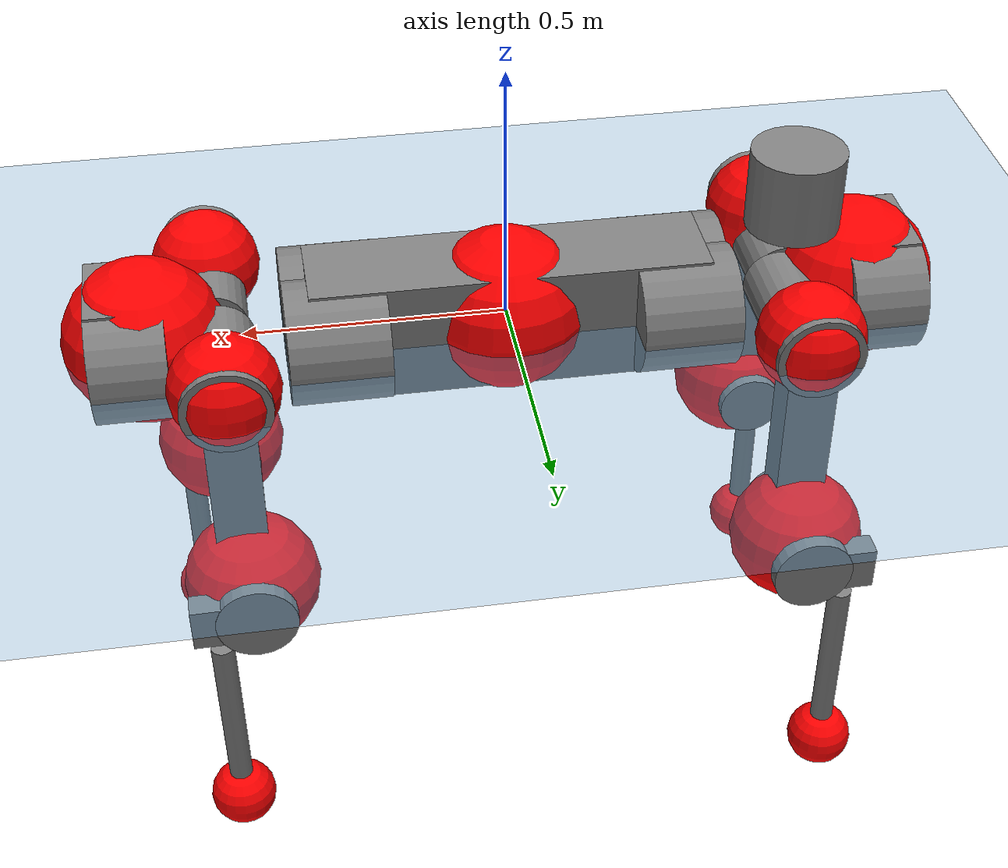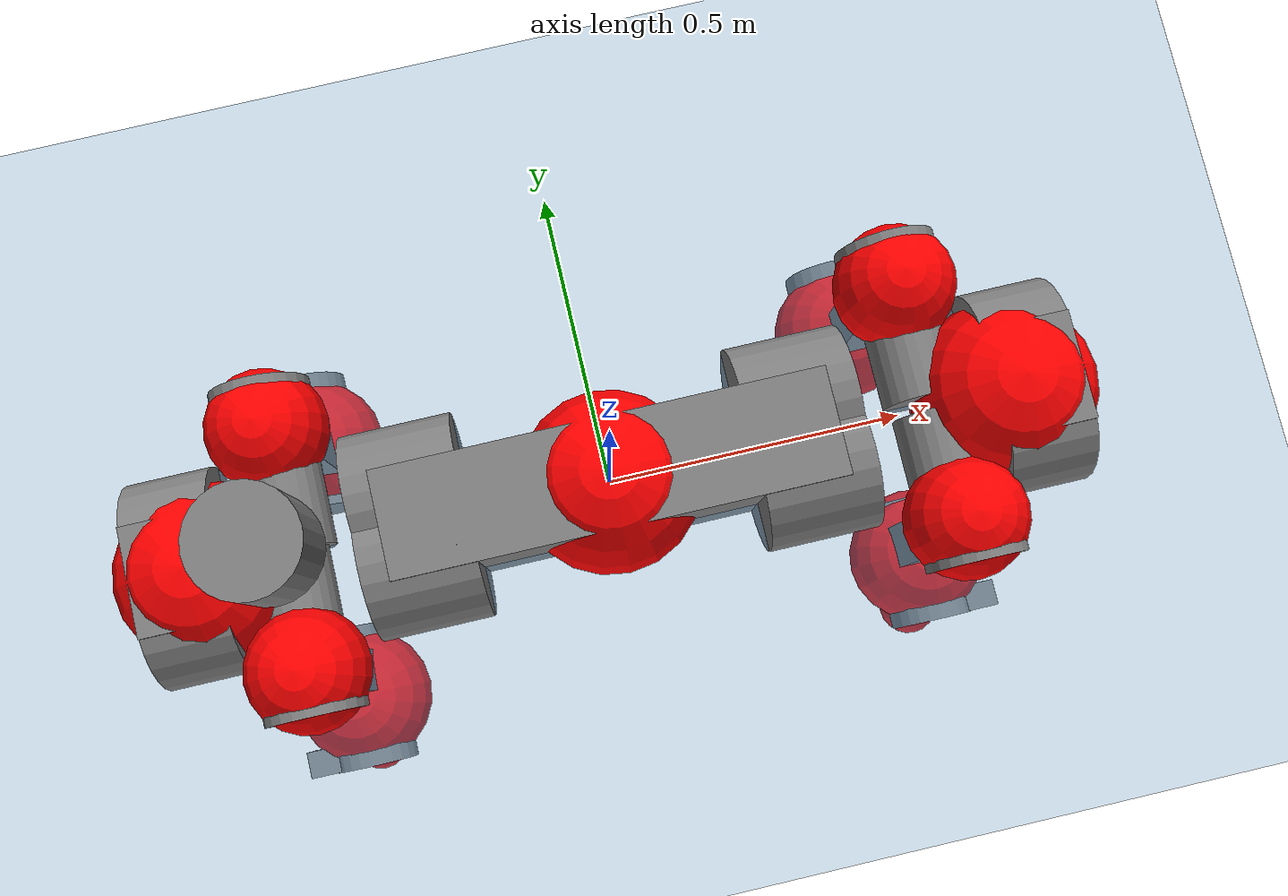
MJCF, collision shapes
<mujoco model="anymal_c">
  <compiler angle="radian" assetdir="assets" balanceinertia="true" inertiafromgeom="false"/>

  <option timestep="0.005" density="1.2" viscosity="2e-05"/>

  <size nkey="1"/>

  <visual>
    <quality shadowsize="8192"/>
    <map shadowclip="0.5"/>
  </visual>

  <default>
    <default class="/">
      <material specular="0" shininess="0.25"/>
      <geom contype="0" conaffinity="0" group="1" solref="-1000 -80"/>
      <site size="0.01 0.005 0.005" group="5"/>
      <general forcelimited="true" forcerange="-80 80" biastype="affine" gainprm="80" biasprm="0 -80 -2"/>
      <default class="anymal_c">
        <joint armature="0.01" damping="0.01" frictionloss="0.1"/>
        <default class="visual">
          <geom type="mesh" group="2"/>
          <default class="visual_zflip"/>
        </default>
        <default class="collision">
          <geom type="cylinder" group="3"/>
          <default class="foot">
            <geom size="0.03 0 0" type="sphere" condim="6" priority="1" friction="0.8 0.02 0.01" solimp="0.015 1 0.03"/>
          </default>
        </default>
      </default>
      <default class="reward_collision_sphere">
        <geom group="5" rgba="1 0 0 1"/>
      </default>
    </default>
  </default>

  <asset>
    <texture type="skybox" colorspace="auto" name="//unnamed_texture_0" builtin="gradient" rgb1="0.95 0.95 0.95" rgb2="0.95 0.95 0.95" width="100" height="600"/>
    <texture type="2d" colorspace="auto" name="texplane" builtin="checker" rgb1="0.345 0.575 0.748" rgb2="0.345 0.575 0.748" markrgb="1 1 1" width="512" height="512"/>
    <texture type="2d" colorspace="linear" name="base" file="base.png"/>
    <texture type="2d" colorspace="linear" name="top_shell" file="top_shell.png"/>
    <texture type="2d" colorspace="linear" name="bottom_shell" file="bottom_shell.png"/>
    <texture type="2d" colorspace="linear" name="remote" file="remote.png"/>
    <texture type="2d" colorspace="linear" name="hatch" file="hatch.png"/>
    <texture type="2d" colorspace="linear" name="handle" file="handle.png"/>
    <texture type="2d" colorspace="linear" name="face" file="face.png"/>
    <texture type="2d" colorspace="linear" name="battery" file="battery.png"/>
    <texture type="2d" colorspace="linear" name="lidar_cage" file="lidar_cage.png"/>
    <texture type="2d" colorspace="linear" name="depth_camera" file="depth_camera.png"/>
    <texture type="2d" colorspace="linear" name="wide_angle_camera" file="wide_angle_camera.png"/>
    <texture type="2d" colorspace="linear" name="lidar" file="lidar.png"/>
    <texture type="2d" colorspace="linear" name="drive" file="drive.png"/>
    <texture type="2d" colorspace="linear" name="hip_l" file="hip_l.png"/>
    <texture type="2d" colorspace="linear" name="shank_l" file="shank_l.png"/>
    <texture type="2d" colorspace="linear" name="foot" file="foot.png"/>
    <texture type="2d" colorspace="linear" name="thigh" file="thigh.png"/>
    <texture type="2d" colorspace="linear" name="shank_r" file="shank_r.png"/>
    <texture type="2d" colorspace="linear" name="hip_r" file="hip_r.png"/>
    <material name="MatPlane" class="/" texture="texplane" texuniform="true" texrepeat="2 2" specular="0.9" shininess="0.5"/>
    <material name="black_plastic" class="/" rgba="0.007 0.007 0.007 1"/>
    <material name="green" class="/" rgba="0.052 0.178 0.033 1"/>
    <material name="red" class="/" rgba="0.178 0.006 0.005 1"/>
    <material name="yellow" class="/" rgba="0.178 0.119 0.006 1"/>
    <material name="lwl" class="/" rgba="0.8 0.8 0.8 1"/>
    <material name="base" class="/" texture="base"/>
    <material name="top_shell" class="/" texture="top_shell"/>
    <material name="bottom_shell" class="/" texture="bottom_shell"/>
    <material name="hip_l" class="/" texture="hip_l"/>
    <material name="thigh" class="/" texture="thigh"/>
    <material name="shank_l" class="/" texture="shank_l"/>
    <material name="foot" class="/" texture="foot"/>
    <material name="hip_r" class="/" texture="hip_r"/>
    <material name="shank" class="/" texture="shank_r"/>
    <material name="hatch" class="/" texture="hatch"/>
    <material name="remote" class="/" texture="remote"/>
    <material name="handle" class="/" texture="handle"/>
    <material name="face" class="/" texture="face"/>
    <material name="depth_camera" class="/" texture="depth_camera"/>
    <material name="wide_angle_camera" class="/" texture="wide_angle_camera"/>
    <material name="battery" class="/" texture="battery"/>
    <material name="lidar_cage" class="/" texture="lidar_cage"/>
    <material name="lidar" class="/" texture="lidar"/>
    <material name="drive" class="/" texture="drive"/>
    <mesh name="base_0" class="/" file="base_0.obj"/>
    <mesh name="base_1" class="/" file="base_1.obj"/>
    <mesh name="base_2" class="/" file="base_2.obj"/>
    <mesh name="base_3" class="/" file="base_3.obj"/>
    <mesh name="base_4" class="/" file="base_4.obj"/>
    <mesh name="base_5" class="/" file="base_5.obj"/>
    <mesh name="top_shell" class="/" file="top_shell.obj"/>
    <mesh name="bottom_shell" class="/" file="bottom_shell.obj"/>
    <mesh name="remote" class="/" file="remote.obj"/>
    <mesh name="handle" class="/" file="handle.obj"/>
    <mesh name="face" class="/" file="face.obj"/>
    <mesh name="wide_angle_camera" class="/" file="wide_angle_camera.obj"/>
    <mesh name="depth_camera" class="/" file="depth_camera.obj"/>
    <mesh name="battery" class="/" file="battery.obj"/>
    <mesh name="lidar_cage" class="/" file="lidar_cage.obj"/>
    <mesh name="lidar" class="/" file="lidar.obj"/>
    <mesh name="drive" class="/" file="drive.obj"/>
    <mesh name="hip_l" class="/" file="hip_l.obj"/>
    <mesh name="thigh" class="/" file="thigh.obj"/>
    <mesh name="shank_l" class="/" file="shank_l.obj"/>
    <mesh name="foot" class="/" file="foot.obj"/>
    <mesh name="hip_r" class="/" file="hip_r.obj"/>
    <mesh name="hatch" class="/" file="hatch.obj"/>
    <mesh name="shank_r" class="/" file="shank_r.obj"/>
  </asset>

  <worldbody>
    <geom name="floor" class="/" size="100 100 0.125" type="plane" group="0" material="MatPlane"/>
    <light name="toplight_shadow" class="/" pos="0 0 5" dir="0.0990148 0.0990148 -0.990148" type="directional" ambient="0.04 0.04 0.04" diffuse="0.55 0.55 0.55" specular="0.12 0.12 0.12"/>
    <light name="toplight_fill" class="/" pos="0 0 5" dir="0.0990148 0.0990148 -0.990148" type="directional" castshadow="false" ambient="0.04 0.04 0.04" diffuse="0.3 0.3 0.3" specular="0.08 0.08 0.08"/>
    <body name="trunk" childclass="anymal_c" pos="-0.000682776 -0.00118134 0.00899016" quat="1 0.00024666 -0.000447465 -0.000174043">
      <inertial pos="0.0138691 0.0117465 0.0726171" quat="0.481887 0.497489 0.512295 0.507783" mass="41.6619" diaginertia="3.91696 0.19732 1.72968"/>
      <joint name="//unnamed_joint_0" type="free" armature="0" damping="0" frictionloss="0"/>
      <geom name="//unnamed_geom_1" class="visual" material="green" mesh="base_0"/>
      <geom name="//unnamed_geom_2" class="visual" material="yellow" mesh="base_1"/>
      <geom name="//unnamed_geom_3" class="visual" material="red" mesh="base_2"/>
      <geom name="//unnamed_geom_4" class="visual" material="black_plastic" mesh="base_3"/>
      <geom name="//unnamed_geom_5" class="visual" material="lwl" mesh="base_4"/>
      <geom name="//unnamed_geom_6" class="visual" material="base" mesh="base_5"/>
      <geom name="trunk_1" class="collision" size="0.376383 0.0908511 0.116809" type="box"/>
      <geom name="trunk_2" class="collision" size="0.116809 0.0940958" pos="0.328251 0.0575629 0" quat="0.707107 0 0.707107 0"/>
      <geom name="trunk_3" class="collision" size="0.116809 0.0940958" pos="-0.328251 0.0575629 0" quat="0.707107 0 0.707107 0"/>
      <geom name="trunk_4" class="collision" size="0.116809 0.0940958" pos="0.328251 -0.0575629 0" quat="0.707107 0 0.707107 0"/>
      <geom name="trunk_5" class="collision" size="0.116809 0.0940958" pos="-0.328251 -0.0575629 0" quat="0.707107 0 0.707107 0"/>
      <geom name="//unnamed_geom_12" class="visual" material="top_shell" mesh="top_shell"/>
      <geom name="//unnamed_geom_13" class="visual" material="bottom_shell" mesh="bottom_shell"/>
      <geom name="//unnamed_geom_14" class="visual" material="remote" mesh="remote"/>
      <geom name="//unnamed_geom_15" class="visual" material="handle" mesh="handle"/>
      <geom name="//unnamed_geom_16" class="visual" pos="0.625564 0 0" quat="1 0 0 0" material="face" mesh="face"/>
      <geom name="trunk_6" class="collision" size="0.071383 0.0908511 0.116809" pos="0.70857 0 0" type="box"/>
      <geom name="//unnamed_geom_18" class="collision" size="0.116809 0.071383" pos="0.70857 0.0575629 0" quat="0.707107 0 0.707107 0"/>
      <geom name="//unnamed_geom_19" class="collision" size="0.116809 0.071383" pos="0.70857 -0.0575629 0" quat="0.707107 0 0.707107 0"/>
      <geom name="//unnamed_geom_20" class="visual" pos="0.696725 0 -0.0460149" quat="0.965926 0 0.258819 0" material="depth_camera" mesh="depth_camera"/>
      <geom name="//unnamed_geom_21" class="visual" pos="0.774221 0 0.0233845" material="wide_angle_camera" mesh="wide_angle_camera"/>
      <geom name="//unnamed_geom_22" class="visual_zflip" pos="-0.625564 0 0" quat="0 0 0 1" material="face" mesh="face"/>
      <geom name="trunk_7" class="collision" size="0.071383 0.0908511 0.116809" pos="-0.70857 0 0" quat="0 0 0 1" type="box"/>
      <geom name="//unnamed_geom_24" class="collision" size="0.116809 0.071383" pos="-0.70857 -0.0575629 0" quat="0 -0.707107 0 0.707107"/>
      <geom name="//unnamed_geom_25" class="collision" size="0.116809 0.071383" pos="-0.70857 0.0575629 0" quat="0 -0.707107 0 0.707107"/>
      <geom name="//unnamed_geom_26" class="visual" pos="-0.696725 0 -0.0460149" quat="0 -0.258819 0 0.965926" material="depth_camera" mesh="depth_camera"/>
      <geom name="//unnamed_geom_27" class="visual_zflip" pos="-0.774221 0 0.0233845" quat="0 0 0 1" material="wide_angle_camera" mesh="wide_angle_camera"/>
      <geom name="//unnamed_geom_28" class="visual" material="battery" mesh="battery"/>
      <geom name="//unnamed_geom_29" class="visual" pos="0 0.0538641 0.0449767" quat="0.683013 -0.183013 0.183013 0.683013" material="depth_camera" mesh="depth_camera"/>
      <geom name="//unnamed_geom_30" class="visual" pos="0 -0.0538641 0.0449767" quat="0.683013 0.183013 0.183013 -0.683013" material="depth_camera" mesh="depth_camera"/>
      <geom name="//unnamed_geom_31" class="visual" pos="-0.54935 0 0.114814" quat="1 0 0 0" material="lidar_cage" mesh="lidar_cage"/>
      <geom name="trunk_8" class="collision" size="0.0908511 0.0778724" pos="-0.54935 0 0.208539"/>
      <geom name="//unnamed_geom_33" class="visual" pos="-0.54935 -0.000269855 0.222129" quat="0.707107 0 0 -0.707107" material="lidar" mesh="lidar"/>
      <geom name="//unnamed_geom_34" class="visual" pos="0.45261 0.0857849 -1.2761e-08" quat="0.258819 0.965926 0 0" material="drive" mesh="drive"/>
      <geom name="//unnamed_geom_35" class="visual" pos="0.45261 -0.0857849 1.2761e-08" quat="0.258819 -0.965926 0 0" material="drive" mesh="drive"/>
      <geom name="//unnamed_geom_36" class="visual" pos="-0.45261 0.0857849 1.2761e-08" quat="0 0 0.965926 -0.258819" material="drive" mesh="drive"/>
      <geom name="//unnamed_geom_37" class="visual" pos="-0.45261 -0.0857849 -1.2761e-08" quat="0 0 -0.965926 -0.258819" material="drive" mesh="drive"/>
      <geom name="//unnamed_geom_38" class="visual" pos="0.175067 0 0.114032" quat="1 0 0 0" material="hatch" mesh="hatch"/>
      <geom name="//unnamed_geom_39" class="reward_collision_sphere" size="0.155745"/>
      <geom name="//unnamed_geom_40" class="reward_collision_sphere" size="0.155745" pos="0.679141 0 0"/>
      <geom name="//unnamed_geom_41" class="reward_collision_sphere" size="0.155745" pos="-0.679141 0 0"/>
      <site name="imu" pos="0.444664 0.0146686 0.0140306" size="0.0129787"/>
      <camera name="track" pos="0 -1.64465 0" quat="0.707107 0.707107 0 0" mode="trackcom"/>
      <camera name="ego_camera" pos="0.679141 0 -0.0624835" quat="-0.5 -0.5 0.5 0.5"/>
      <body name="LF_HIP" pos="0.45113 0.0904937 -0.000702242" quat="0.259773 0.965665 0.00287095 -0.00113167">
        <inertial pos="0.0736275 -0.00599718 -0.0128379" quat="-0.136277 0.730668 -0.150554 0.651833" mass="6.9758" diaginertia="0.0528477 0.00181769 0.0288053"/>
        <joint name="LF_HAA" pos="0 0 0" axis="0.998818 0.00492198 -0.0483624" stiffness="0.0191548" range="-0.714176 0.344146" armature="0.00462591" damping="0.0694573" frictionloss="0.144475"/>
        <geom name="//unnamed_geom_42" class="visual" pos="0 -0.00075067 0.000123297" quat="0.258819 -0.965926 0 0" material="hip_l" mesh="hip_l"/>
        <geom name="//unnamed_geom_43" class="visual" pos="0.0904012 -0.100759 -0.0636451" quat="0.183013 -0.683013 0.683013 0.183013" material="drive" mesh="drive"/>
        <geom name="//unnamed_geom_44" class="collision" size="0.0648936 0.0908511" pos="0.0904012 -0.00983487 -0.0107862" quat="-0.353553 -0.612372 0.612372 -0.353553"/>
        <body name="LF_THIGH" pos="0.0903332 -0.0591397 -0.0647619" quat="0.182993 -0.682972 0.683077 0.182945">
          <inertial pos="0.040935 -0.000332087 -0.395979" quat="0.99098 -0.0108981 -0.0890333 0.0995669" mass="6.02903" diaginertia="0.272235 0.0111539 0.0398615"/>
          <joint name="LF_HFE" pos="0 0 0" axis="0.997693 -0.0313736 -0.0602095" range="-3.07406 3.09353" armature="0.0117656" damping="0.0276044" frictionloss="0.205405"/>
          <geom name="//unnamed_geom_45" class="visual" pos="0.0136661 2.15346e-05 0" quat="0.707107 0 0 -0.707107" material="thigh" mesh="thigh"/>
          <geom name="//unnamed_geom_46" class="collision" size="0.0843617 0.0519149" pos="0.0603681 0 0" quat="0.5 0.5 -0.5 -0.5"/>
          <geom name="//unnamed_geom_47" class="collision" size="0.0486702 0.0389362 0.183408" pos="0.0452761 0 -0.220745" quat="0.707107 0 0 -0.707107" type="box"/>
          <geom name="//unnamed_geom_48" class="visual" pos="0.151373 0 -0.445195" quat="1 0 0 0" material="drive" mesh="drive"/>
          <geom name="//unnamed_geom_49" class="collision" size="0.0648936 0.0908511" pos="0.0457288 0 -0.445195" quat="0.707107 0 0.707107 0"/>
          <geom name="//unnamed_geom_50" class="reward_collision_sphere" size="0.10383" pos="0.0377301 0 0"/>
          <body name="LF_SHANK" pos="0.140817 0.0109171 -0.431382" quat="0.999986 0.00475396 -0.00145823 -0.00168981">
            <inertial pos="0.0113665 -0.0504501 -0.122691" quat="0.992927 -0.114383 -0.0181204 -0.0261715" mass="1.39632" diaginertia="0.0866805 0.0034817 0.0117392"/>
            <joint name="LF_KFE" pos="0 0 0" axis="0.999678 -0.0251744 -0.00312538" stiffness="0.000476818" range="-2.96884 3.03535" armature="0.0089344" damping="0.0606725" frictionloss="0.0766555"/>
            <geom name="//unnamed_geom_51" class="visual" pos="0.00445622 0.0237608 0" quat="0.707107 0 0 -0.707107" material="shank_l" mesh="shank_l"/>
            <geom name="LF_kfe_act" class="collision" size="0.0778724 0.0259575" pos="0.030184 0 0" quat="0.5 0.5 -0.5 -0.5"/>
            <geom name="//unnamed_geom_53" class="collision" size="0.0746264 0.0438032 0.0246596" pos="0.030184 -0.047283 0" quat="0.5 0.5 -0.5 -0.5" type="box"/>
            <geom name="//unnamed_geom_54" class="visual" pos="0.019694 -0.0646666 -0.527939" quat="0.382683 0 0 -0.92388" material="foot" mesh="foot"/>
            <geom name="LF_calf" class="collision" size="0.0227128 0.183327" pos="0.0196951 -0.0723237 -0.26397" quat="0.707107 0 0 -0.707107"/>
            <geom name="LF_foot" class="foot" size="0.0428194" pos="0.0196951 -0.0723237 -0.492792" quat="0.707107 0 0 -0.707107"/>
            <geom name="//unnamed_geom_57" class="reward_collision_sphere" size="0.129787" pos="-0.0754601 0 0"/>
            <geom name="//unnamed_geom_58" class="reward_collision_sphere" size="0.0648936" pos="0.0196951 -0.0723237 -0.492792"/>
            <site name="LF_foot" class="foot" pos="0.0196951 -0.0723237 -0.492792" quat="0.707107 0 0 -0.707107" size="0.0129787"/>
          </body>
        </body>
      </body>
      <body name="RF_HIP" pos="0.461006 -0.0870475 0.00136737" quat="0.258832 -0.965922 -1.70184e-07 7.82515e-06">
        <inertial pos="0.0741608 0.013584 -0.013421" quat="0.139944 0.678912 0.128652 0.709184" mass="5.69195" diaginertia="0.0442854 0.00150911 0.0278271"/>
        <joint name="RF_HAA" pos="0 0 0" axis="0.999698 0.00972803 -0.0225852" stiffness="0.0215761" range="-0.248121 0.681357" armature="0.0200061" damping="0.00439453" frictionloss="0.20625"/>
        <geom name="//unnamed_geom_59" class="visual" pos="0 0.000750664 0.000123297" quat="0.258819 0.965926 0 0" material="hip_r" mesh="hip_r"/>
        <geom name="//unnamed_geom_60" class="visual" pos="0.0904012 0.100759 -0.0636451" quat="0.183013 0.683013 0.683013 -0.183013" material="drive" mesh="drive"/>
        <geom name="//unnamed_geom_61" class="collision" size="0.0648936 0.0908511" pos="0.0904012 0.00983487 -0.0107862" quat="-0.353553 0.612372 0.612372 0.353553"/>
        <body name="RF_THIGH" pos="0.0963122 0.0471568 -0.0588632" quat="0.184178 0.682725 0.683046 -0.182793">
          <inertial pos="0.0465136 -0.00169593 -0.383229" quat="0.985287 0.0205309 -0.117093 0.122792" mass="8.74769" diaginertia="0.263683 0.0113345 0.0403432"/>
          <joint name="RF_HFE" pos="0 0 0" axis="0.998738 0.013705 0.0483223" stiffness="0.010379" range="-3.41292 2.96848" armature="0.0121137" damping="0.0596255" frictionloss="0.0334094"/>
          <geom name="//unnamed_geom_62" class="visual" pos="0.0136661 2.15346e-05 0" quat="0.707107 0 0 -0.707107" material="thigh" mesh="thigh"/>
          <geom name="//unnamed_geom_63" class="collision" size="0.0843617 0.0519149" pos="0.0603681 0 0" quat="0.5 0.5 0.5 0.5"/>
          <geom name="//unnamed_geom_64" class="collision" size="0.0486702 0.0389362 0.183408" pos="0.0452761 0 -0.220745" quat="0.707107 0 0 0.707107" type="box"/>
          <geom name="//unnamed_geom_65" class="visual" pos="0.151373 0 -0.445195" quat="1 0 0 0" material="drive" mesh="drive"/>
          <geom name="//unnamed_geom_66" class="collision" size="0.0648936 0.0908511" pos="0.0457288 0 -0.445195" quat="0.707107 0 0.707107 0"/>
          <geom name="//unnamed_geom_67" class="reward_collision_sphere" size="0.10383" pos="0.0377301 0 0"/>
          <body name="RF_SHANK" pos="0.139754 0.0126248 -0.450577" quat="1 5.96478e-06 -8.23851e-05 -0.000180584">
            <inertial pos="0.00699102 0.0503767 -0.138495" quat="0.994795 0.0920249 -0.0294539 0.0323556" mass="1.2982" diaginertia="0.0918408 0.00387546 0.0102732"/>
            <joint name="RF_KFE" pos="0 0 0" axis="0.999991 -0.00130101 -0.00391816" range="-2.98592 2.97497" armature="0.0157461" damping="0.00561242" frictionloss="0.215502"/>
            <geom name="//unnamed_geom_68" class="visual" pos="0.00445619 -0.0237607 0" quat="0.707107 0 0 0.707107" material="shank" mesh="shank_r"/>
            <geom name="RF_kfe_act" class="collision" size="0.0778724 0.0259575" pos="0.030184 0 0" quat="0.5 0.5 0.5 0.5"/>
            <geom name="//unnamed_geom_70" class="collision" size="0.0746264 0.0438032 0.0246596" pos="0.030184 0.047283 0" quat="0.5 0.5 0.5 0.5" type="box"/>
            <geom name="//unnamed_geom_71" class="visual" pos="0.0196962 0.0646666 -0.527939" quat="0.382683 0 0 0.92388" material="foot" mesh="foot"/>
            <geom name="RF_calf" class="collision" size="0.0227128 0.183327" pos="0.0196951 0.0723237 -0.26397" quat="0.707107 0 0 0.707107"/>
            <geom name="RF_foot" class="foot" size="0.0607584" pos="0.0196951 0.0723237 -0.492792" quat="0.707107 0 0 0.707107"/>
            <geom name="//unnamed_geom_74" class="reward_collision_sphere" size="0.129787" pos="-0.0754601 0 0"/>
            <geom name="//unnamed_geom_75" class="reward_collision_sphere" size="0.0648936" pos="0.0196951 0.0723237 -0.492792"/>
            <site name="RF_foot" class="foot" pos="0.0196951 0.0723237 -0.492792" quat="0.707107 0 0 0.707107" size="0.0129787"/>
          </body>
        </body>
      </body>
      <body name="LH_HIP" pos="-0.439046 0.0797874 -0.00131112" quat="-0.000786503 0.000446001 0.965494 -0.260423">
        <inertial pos="0.0796052 0.000415553 -0.0129379" quat="0.104425 0.663514 0.130031 0.72934" mass="6.08488" diaginertia="0.0553031 0.00175579 0.0399358"/>
        <joint name="LH_HAA" pos="0 0 0" axis="0.999715 0.0232995 0.00519104" stiffness="0.0229394" range="-0.591254 1.01698" armature="0.0213251" damping="0.0474188" frictionloss="0.128109"/>
        <geom name="//unnamed_geom_76" class="visual" pos="0 0.000750664 0.000123297" quat="-0.258819 -0.965926 0 0" material="hip_r" mesh="hip_r"/>
        <geom name="//unnamed_geom_77" class="visual" pos="0.0904012 0.100759 -0.0636451" quat="0.183013 0.683013 0.683013 -0.183013" material="drive" mesh="drive"/>
        <geom name="//unnamed_geom_78" class="collision" size="0.0648936 0.0908511" pos="0.0904012 0.00983487 -0.0107862" quat="-0.353553 0.612372 0.612372 0.353553"/>
        <body name="LH_THIGH" pos="0.0986993 0.07424 -0.0621828" quat="0.183218 0.683346 0.682647 -0.182926">
          <inertial pos="0.0469055 -0.0105127 -0.381929" quat="0.992527 -0.00614485 -0.0827873 0.0894326" mass="6.60874" diaginertia="0.233186 0.012283 0.0367572"/>
          <joint name="LH_HFE" pos="0 0 0" axis="0.998523 0.0460174 0.0288963" range="-3.12535 3.15851" armature="0.0173209" damping="0.040018" frictionloss="0.0988962"/>
          <geom name="//unnamed_geom_79" class="visual" pos="0.0136661 2.15346e-05 0" quat="0.707107 0 0 -0.707107" material="thigh" mesh="thigh"/>
          <geom name="//unnamed_geom_80" class="collision" size="0.0843617 0.0519149" pos="0.0603681 0 0" quat="0.5 0.5 -0.5 -0.5"/>
          <geom name="//unnamed_geom_81" class="collision" size="0.0486702 0.0389362 0.183408" pos="0.0452761 0 -0.220745" quat="0.707107 0 0 -0.707107" type="box"/>
          <geom name="//unnamed_geom_82" class="visual" pos="0.151373 0 -0.445195" quat="1 0 0 0" material="drive" mesh="drive"/>
          <geom name="//unnamed_geom_83" class="collision" size="0.0648936 0.0908511" pos="0.0457288 0 -0.445195" quat="0.707107 0 0.707107 0"/>
          <geom name="//unnamed_geom_84" class="reward_collision_sphere" size="0.10383" pos="0.0377301 0 0"/>
          <body name="LH_SHANK" pos="0.159854 0.000140839 -0.440098" quat="0.999996 0.000666674 -0.00221582 0.00136409">
            <inertial pos="0.00839922 0.0498613 -0.126401" quat="0.993984 0.0870766 -0.0660721 0.00695652" mass="1.29877" diaginertia="0.0805425 0.00347073 0.0124083"/>
            <joint name="LH_KFE" pos="0 0 0" axis="0.998821 0.0331007 -0.0355052" range="-3.18796 3.14464" armature="0.0189322" damping="0.0132053" frictionloss="0.0748192"/>
            <geom name="//unnamed_geom_85" class="visual" pos="0.00445619 -0.0237607 0" quat="-0.707107 0 0 -0.707107" material="shank" mesh="shank_r"/>
            <geom name="LH_kfe_act" class="collision" size="0.0778724 0.0259575" pos="0.030184 0 0" quat="0.5 0.5 -0.5 -0.5"/>
            <geom name="//unnamed_geom_87" class="collision" size="0.0746264 0.0438032 0.0246596" pos="0.030184 0.047283 0" quat="0.5 0.5 -0.5 -0.5" type="box"/>
            <geom name="//unnamed_geom_88" class="visual" pos="0.0196962 0.0646666 -0.527939" quat="-0.382683 0 0 -0.92388" material="foot" mesh="foot"/>
            <geom name="LH_calf" class="collision" size="0.0227128 0.183327" pos="0.0196951 0.0723237 -0.26397" quat="0.707107 0 0 -0.707107"/>
            <geom name="LH_foot" class="foot" size="0.0167419" pos="0.0196951 0.0723237 -0.492792" quat="0.707107 0 0 -0.707107"/>
            <geom name="//unnamed_geom_91" class="reward_collision_sphere" size="0.129787" pos="-0.0754601 0 0"/>
            <geom name="//unnamed_geom_92" class="reward_collision_sphere" size="0.0648936" pos="0.0196951 0.0723237 -0.492792"/>
            <site name="LH_foot" class="foot" pos="0.0196951 0.0723237 -0.492792" quat="0.707107 0 0 -0.707107" size="0.0129787"/>
          </body>
        </body>
      </body>
      <body name="RH_HIP" pos="-0.452754 -0.0732805 0.00601713" quat="0.00319018 -0.00319297 -0.966472 -0.256731">
        <inertial pos="0.0979427 -0.0134482 -0.0242606" quat="-0.117433 0.705242 -0.149008 0.683111" mass="6.6243" diaginertia="0.0504132 0.00198638 0.0386386"/>
        <joint name="RH_HAA" pos="0 0 0" axis="1 -0.000869715 7.19972e-05" stiffness="0.0322673" range="-0.501391 0.21862" armature="0.0128485" damping="0.0498886" frictionloss="0.137984"/>
        <geom name="//unnamed_geom_93" class="visual" pos="0 -0.00075067 0.000123297" quat="-0.258819 0.965926 0 0" material="hip_l" mesh="hip_l"/>
        <geom name="//unnamed_geom_94" class="visual" pos="0.0904012 -0.100759 -0.0636451" quat="-0.183013 0.683013 -0.683013 -0.183013" material="drive" mesh="drive"/>
        <geom name="//unnamed_geom_95" class="collision" size="0.0648936 0.0908511" pos="0.0904012 -0.00983487 -0.0107862" quat="0.353553 0.612372 -0.612372 0.353553"/>
        <body name="RH_THIGH" pos="0.090365 -0.0532234 -0.0778366" quat="-0.183167 0.682667 -0.683334 -0.182949">
          <inertial pos="0.0373176 0.00290039 -0.386031" quat="0.993419 -0.0054684 -0.0802601 0.0815331" mass="9.24671" diaginertia="0.318479 0.0133303 0.0443016"/>
          <joint name="RH_HFE" pos="0 0 0" axis="0.998593 0.0528923 0.00388213" stiffness="0.00734592" range="-3.14254 3.17821" armature="0.0165198" damping="0.0308536" frictionloss="0.137655"/>
          <geom name="//unnamed_geom_96" class="visual" pos="0.0136661 2.15346e-05 0" quat="0.707107 0 0 -0.707107" material="thigh" mesh="thigh"/>
          <geom name="//unnamed_geom_97" class="collision" size="0.0843617 0.0519149" pos="0.0603681 0 0" quat="0.5 0.5 0.5 0.5"/>
          <geom name="//unnamed_geom_98" class="collision" size="0.0486702 0.0389362 0.183408" pos="0.0452761 0 -0.220745" quat="0.707107 0 0 0.707107" type="box"/>
          <geom name="//unnamed_geom_99" class="visual" pos="0.151373 0 -0.445195" quat="1 0 0 0" material="drive" mesh="drive"/>
          <geom name="//unnamed_geom_100" class="collision" size="0.0648936 0.0908511" pos="0.0457288 0 -0.445195" quat="0.707107 0 0.707107 0"/>
          <geom name="//unnamed_geom_101" class="reward_collision_sphere" size="0.10383" pos="0.0377301 0 0"/>
          <body name="RH_SHANK" pos="0.163398 0.00282276 -0.447266" quat="0.999995 0.0027892 0.00130672 -0.00107378">
            <inertial pos="0.0135395 -0.0502074 -0.126137" quat="0.992707 -0.10622 0.0528216 -0.0214687" mass="1.25974" diaginertia="0.0863704 0.00298986 0.0103893"/>
            <joint name="RH_KFE" pos="0 0 0" axis="0.999859 -0.0129495 -0.0107183" range="-3.08807 3.22439" armature="0.0216532" damping="0" frictionloss="0.132438"/>
            <geom name="//unnamed_geom_102" class="visual" pos="0.00445622 0.0237608 0" quat="0.707107 0 0 -0.707107" material="shank_l" mesh="shank_l"/>
            <geom name="RH_kfe_act" class="collision" size="0.0778724 0.0259575" pos="0.030184 0 0" quat="0.5 0.5 0.5 0.5"/>
            <geom name="//unnamed_geom_104" class="collision" size="0.0746264 0.0438032 0.0246596" pos="0.030184 -0.047283 0" quat="0.5 0.5 0.5 0.5" type="box"/>
            <geom name="//unnamed_geom_105" class="visual" pos="0.019694 -0.0646666 -0.527939" quat="0.382683 0 0 -0.92388" material="foot" mesh="foot"/>
            <geom name="RH_calf" class="collision" size="0.0227128 0.183327" pos="0.0196951 -0.0723237 -0.26397" quat="0.707107 0 0 0.707107"/>
            <geom name="RH_foot" class="foot" size="0.0515268" pos="0.0196951 -0.0723237 -0.492792" quat="0.707107 0 0 0.707107"/>
            <geom name="//unnamed_geom_108" class="reward_collision_sphere" size="0.129787" pos="-0.0754601 0 0"/>
            <geom name="//unnamed_geom_109" class="reward_collision_sphere" size="0.0648936" pos="0.0196951 -0.0723237 -0.492792"/>
            <site name="RH_foot" class="foot" pos="0.0196951 -0.0723237 -0.492792" quat="0.707107 0 0 0.707107" size="0.0129787"/>
          </body>
        </body>
      </body>
    </body>
  </worldbody>

  <contact>
    <pair class="/" geom1="floor" geom2="LF_foot" name="//unnamed_contact_0"/>
    <pair class="/" geom1="floor" geom2="RF_foot" name="//unnamed_contact_1"/>
    <pair class="/" geom1="floor" geom2="LH_foot" name="//unnamed_contact_2"/>
    <pair class="/" geom1="floor" geom2="RH_foot" name="//unnamed_contact_3"/>
  </contact>

  <actuator>
    <general name="LF_HAA" class="/" joint="LF_HAA" forcerange="-111.72 111.72" gainprm="74.4571" biasprm="0 -74.4571 -2.9623"/>
    <general name="LF_HFE" class="/" joint="LF_HFE" forcerange="-132.851 132.851" gainprm="74.4571" biasprm="0 -74.4571 -2.9623"/>
    <general name="LF_KFE" class="/" joint="LF_KFE" forcerange="-117.363 117.363" gainprm="74.4571" biasprm="0 -74.4571 -2.9623"/>
    <general name="RF_HAA" class="/" joint="RF_HAA" forcerange="-135.182 135.182" gainprm="74.4571" biasprm="0 -74.4571 -2.9623"/>
    <general name="RF_HFE" class="/" joint="RF_HFE" forcerange="-80.1476 80.1476" gainprm="74.4571" biasprm="0 -74.4571 -2.9623"/>
    <general name="RF_KFE" class="/" joint="RF_KFE" forcerange="-148.409 148.409" gainprm="74.4571" biasprm="0 -74.4571 -2.9623"/>
    <general name="LH_HAA" class="/" joint="LH_HAA" forcerange="-106.463 106.463" gainprm="74.4571" biasprm="0 -74.4571 -2.9623"/>
    <general name="LH_HFE" class="/" joint="LH_HFE" forcerange="-149.258 149.258" gainprm="74.4571" biasprm="0 -74.4571 -2.9623"/>
    <general name="LH_KFE" class="/" joint="LH_KFE" forcerange="-116.21 116.21" gainprm="74.4571" biasprm="0 -74.4571 -2.9623"/>
    <general name="RH_HAA" class="/" joint="RH_HAA" forcerange="-121.156 121.156" gainprm="74.4571" biasprm="0 -74.4571 -2.9623"/>
    <general name="RH_HFE" class="/" joint="RH_HFE" forcerange="-154.777 154.777" gainprm="74.4571" biasprm="0 -74.4571 -2.9623"/>
    <general name="RH_KFE" class="/" joint="RH_KFE" forcerange="-61.7446 61.7446" gainprm="74.4571" biasprm="0 -74.4571 -2.9623"/>
  </actuator>

  <sensor>
    <gyro site="imu" name="imu_angular_velocity"/>
    <velocimeter site="imu" name="imu_linear_velocity"/>
    <framelinvel objtype="site" objname="LF_foot" name="LF_foot_global_linear_velocity"/>
    <framelinvel objtype="site" objname="RF_foot" name="RF_foot_global_linear_velocity"/>
    <framelinvel objtype="site" objname="LH_foot" name="LH_foot_global_linear_velocity"/>
    <framelinvel objtype="site" objname="RH_foot" name="RH_foot_global_linear_velocity"/>
  </sensor>

  <keyframe>
    <key name="home" qpos="0 0 0.55 1 0 0 0 0 0.4 -0.8 0 -0.4 0.8 0 -0.4 0.8 0 0.4 -0.8"/>
  </keyframe>
</mujoco>
